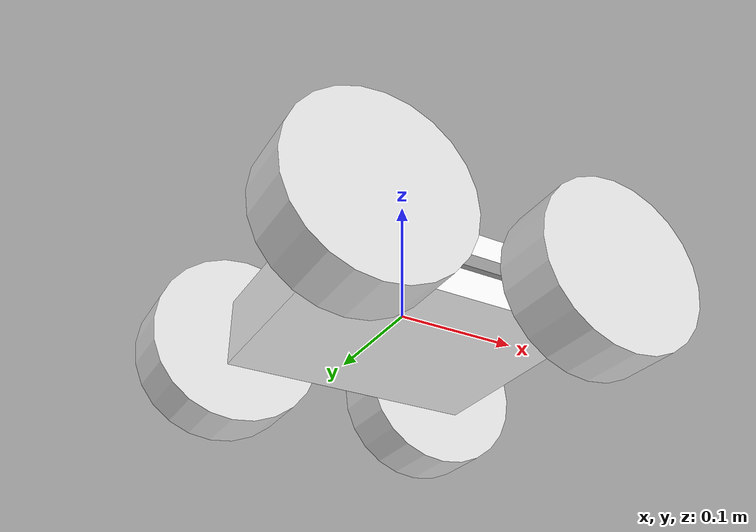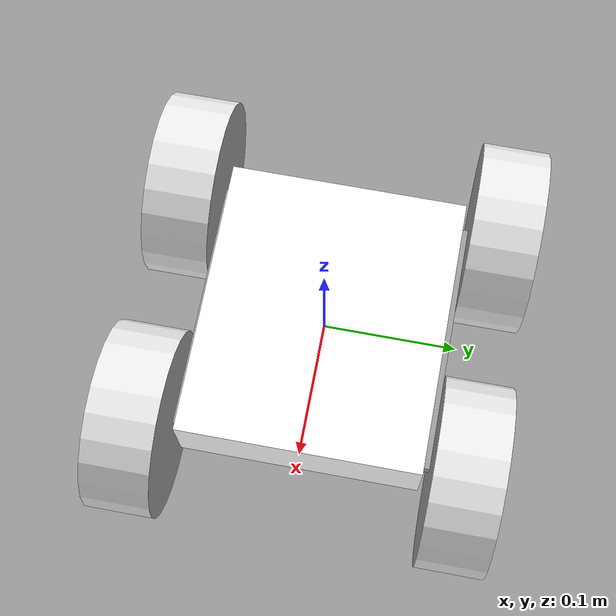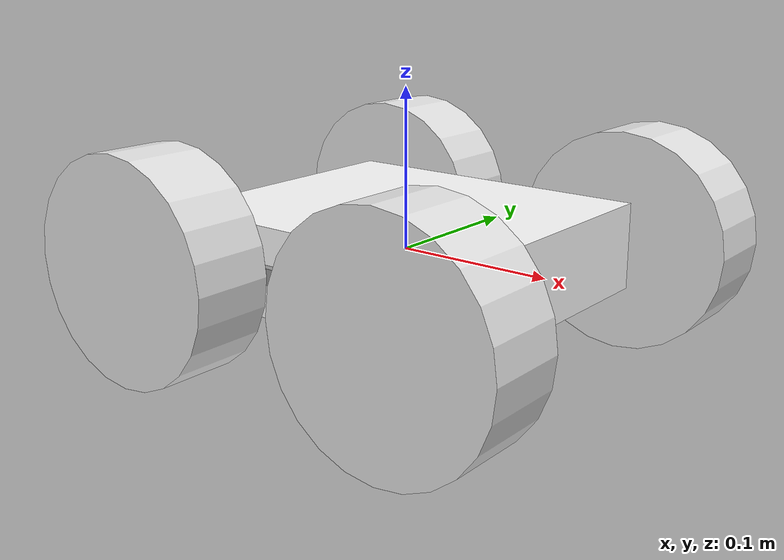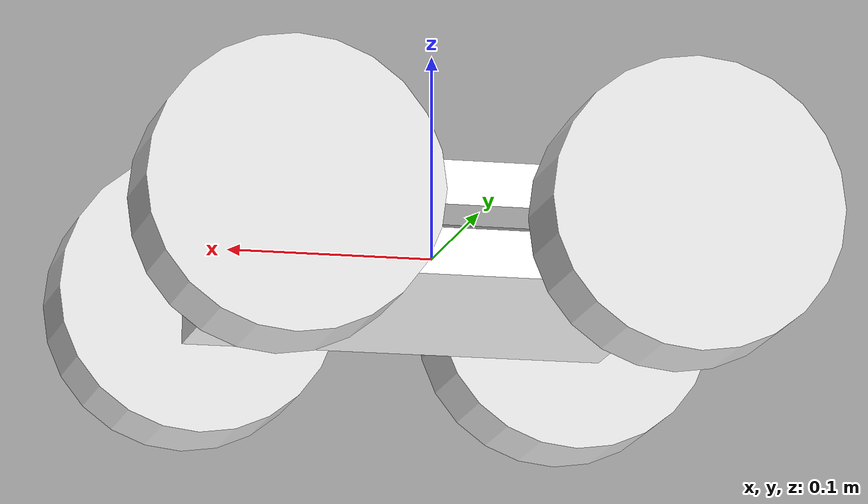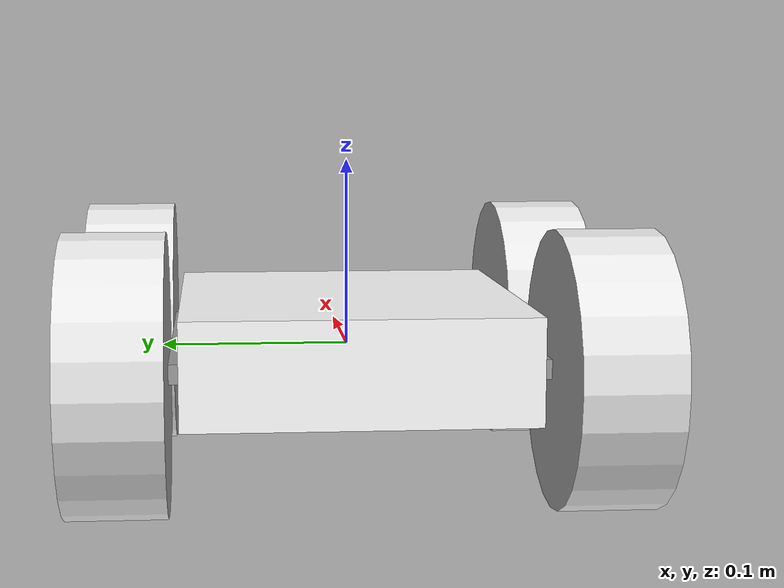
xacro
<?xml version="1.0"?>
<robot xmlns:xacro="http://www.ros.org/wiki/xacro" name="track_robot">

    <!--common-->
    <xacro:include filename="$(find sphero_rvr_description)/urdf/common.urdf.xacro" />
    <xacro:include filename="$(find sphero_rvr_description)/urdf/materials.urdf.xacro" />
    <xacro:include filename="$(find sphero_rvr_description)/urdf/geometry.urdf.xacro" />

    <!-- parts -->
    <xacro:include filename="$(find sphero_rvr_description)/urdf/track.urdf.xacro" />

    <link name="base_link" >
        <origin xyz="0 0 ${rvr_body_height/2}" rpy="0 0 0" />
        <visual>
            <geometry>
                <box size="${rvr_body_length} ${rvr_body_width} ${rvr_body_height}" />
            </geometry>
            <material name="White"/>
        </visual>
    </link>

    <xacro:track name="left_track" parent="base_link" length="${rvr_track_length}" spin="1" >
        <origin xyz="0 ${rvr_body_width/2} 0" rpy="0 0 0" />
    </xacro:track>

    <xacro:track name="right_track" parent="base_link" length="${rvr_track_length}" spin="-1" >
        <origin xyz="0 -${rvr_body_width/2} 0" rpy="${M_PI} 0 0" />
    </xacro:track>

</robot>

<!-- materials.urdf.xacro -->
<!-- include materials at top level urdf -->

<robot>

  <!-- material block colours -->
  <material name="Blue">
    <color rgba="0.0 0.0 0.8 1.0"/>
  </material>

  <material name="Green">
    <color rgba="0.0 0.8 0.0 1.0"/>
  </material>

  <material name="Red">
    <color rgba="0.8 0.0 0.0 1.0"/>
  </material>

  <material name="White">
    <color rgba="1.0 1.0 1.0 1.0"/>
  </material>

  <material name="Black">
    <color rgba="0.1 0.1 0.1 1.0"/>
  </material>

  <material name="DarkGrey">
    <color rgba="0.4 0.4 0.4 1.0"/>
  </material>

  <material name="DarkGrey2">
    <color rgba="0.3 0.3 0.3 1.0"/>
  </material>

  <material name="LightGrey">
    <color rgba="0.6 0.6 0.6 1.0"/>
  </material>

  <material name="LightGrey2">
    <color rgba="0.9 0.9 0.9 1.0"/>
  </material>

  <material name="Brown">
    <color rgba="0.8 0.7 0.5 1.0"/>
  </material>

</robot>

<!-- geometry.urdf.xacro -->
<robot xmlns:xacro="http://www.ros.org/wiki/xacro">

	<!-- robot geometric characteristics -->
    <xacro:property name="rvr_body_length" value="0.21"/>
    <xacro:property name="rvr_body_width" value="0.18"/>
    <xacro:property name="rvr_body_height" value="0.055"/>

    <xacro:property name="rvr_wheel_width" value="0.05"/>
    <xacro:property name="rvr_wheel_radius" value="0.07"/>

    <xacro:property name="rvr_track_length" value="0.19"/>
    <xacro:property name="rvr_track_link_size" value="0.01"/>

</robot>

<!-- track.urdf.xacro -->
<robot xmlns:xacro="http://www.ros.org/wiki/xacro">

    <xacro:macro name="track" params="name parent *origin length spin">

        <xacro:include filename="$(find sphero_rvr_description)/urdf/geometry.urdf.xacro" />

        <xacro:include filename="$(find sphero_rvr_description)/urdf/wheel.urdf.xacro" />

        <joint name="${name}_joint" type="fixed" >
            <parent link="${parent}" />
            <child link="${name}" />
            <xacro:insert_block name="origin" />
        </joint>

        <link name="${name}" >
            <visual>
                <geometry>
                    <box size="${length} ${rvr_track_link_size} ${rvr_track_link_size}" />
                </geometry>
                <material name="LightGrey"/>
            </visual>
        </link>

        <xacro:wheel name="${name}_back_wheel" parent="${name}" direction="${spin}" >
            <origin xyz="-${length/2} ${rvr_track_link_size/2} 0" rpy="0 0 0" />
        </xacro:wheel>

        <xacro:wheel name="${name}_front_wheel" parent="${name}" direction="${spin}">
            <origin xyz="${length/2} ${rvr_track_link_size/2} 0" rpy="0 0 0" />
        </xacro:wheel>

    </xacro:macro>

</robot>

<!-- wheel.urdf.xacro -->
<robot xmlns:xacro="http://www.ros.org/wiki/xacro">

    <xacro:macro name="wheel" params="name parent direction:=1 *origin">

        <xacro:include filename="$(find sphero_rvr_description)/urdf/geometry.urdf.xacro" />

        <joint name="${name}_joint" type="continuous" >
            <parent link="${parent}" />
            <child link="${name}" />
            <xacro:insert_block name="origin" />
            <axis xyz="0 ${direction} 0" rpy="0 0 0" />
            <limit effort="30" velocity="0.2" />
        </joint>

        <link name="${name}">
            <visual>
                <origin xyz="0 ${rvr_wheel_width/2} 0" rpy="${M_PI/2} 0 0" />
                <geometry>
                    <cylinder radius="${rvr_wheel_radius}" length="${rvr_wheel_width}" />
                </geometry>
                <material name="LightGrey2"/>
            </visual>
            <collision >
                <origin xyz="0 ${rvr_wheel_width/2} 0" rpy="${M_PI/2} 0 0" />
                <geometry>
                    <cylinder radius="${1.05*rvr_wheel_radius}" length="${1.05*rvr_wheel_width}" />
                </geometry>
            </collision>
        </link>

        <transmission name="${name}_trans" type="SimpleTransmission">
            <type>transmission_interface/SimpleTransmission</type>
            <actuator name="${name}_motor">
            <mechanicalReduction>1</mechanicalReduction>
            </actuator>
            <joint name="${name}_joint">
                <hardwareInterface>hardware_interface/VelocityJointInterface</hardwareInterface>
            </joint>
        </transmission>

    </xacro:macro>

</robot>
